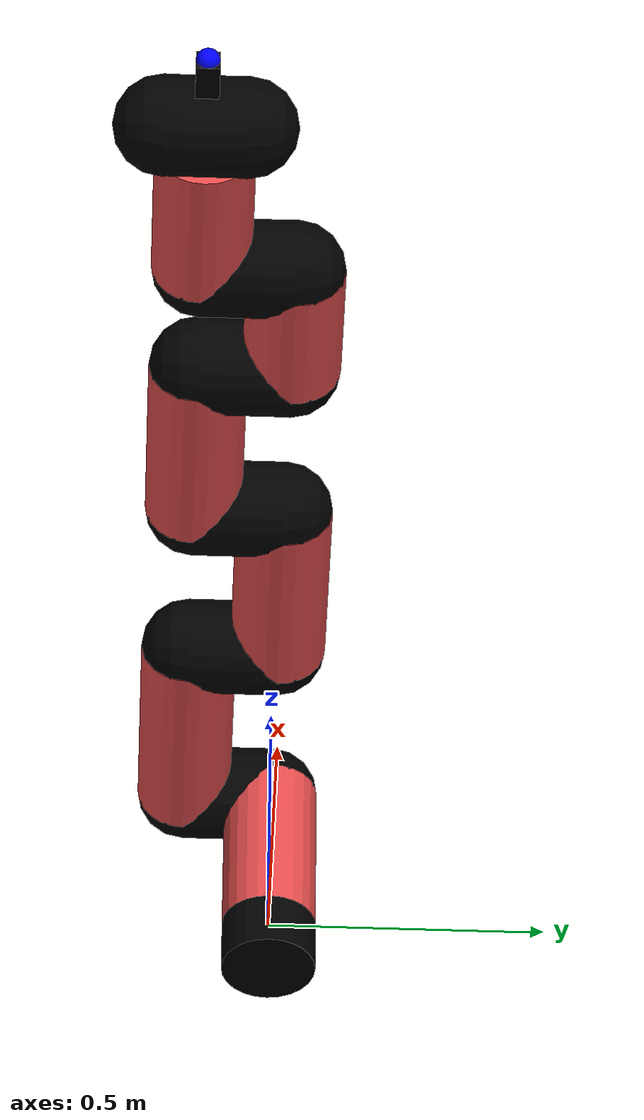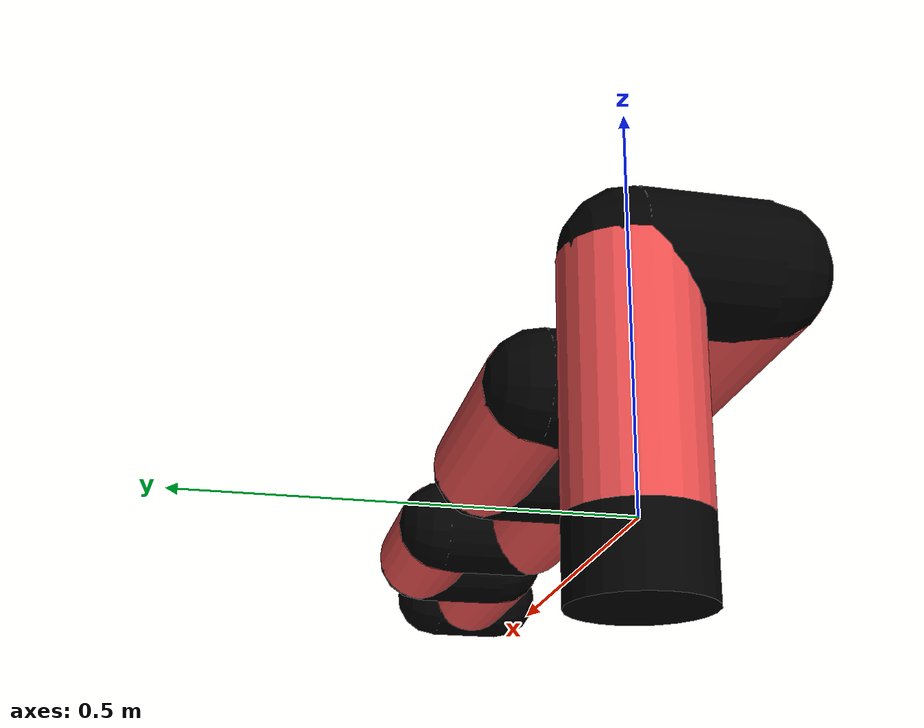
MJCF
<mujoco model="manipulator">
		<compiler angle="degree" coordinate="local" inertiafromgeom="auto" meshdir="meshes/"/>
		<option gravity="0 0 0" integrator="RK4" iterations="30" timestep="0.01"/>

		<default>
		<joint armature="1" limited="true" stiffness="10" damping="15" frictionloss="5.0"/>
		<geom conaffinity="1" condim="3" contype="1" friction=".5 .1 .1" margin="0.002"/>
		<motor ctrllimited="true"/>
		<position ctrllimited="true"/>
		</default>

		<asset>
		<texture builtin="gradient" height="100" rgb1="1.0 1.0 1.0" rgb2="1.0 1.0 1.0" type="skybox" width="100"/>
		<texture builtin="flat" height="32" name="arm_tex" rgb1="0.9 0.3 0.3" type="2d" width="32"/>
		<texture builtin="flat" height="32" name="gripper_tex" rgb1="0.0 0.0 0.0" type="cube" width="32"/>

		<material name="arm_mat" shininess="0.1" specular="0.1" texture="arm_tex"/>
		<material name="gripper_mat" shininess="1" specular="1" texture="gripper_tex"/>
		</asset>

		<worldbody>
		<light cutoff="45" diffuse=".8 .8 .8" dir="0 0.16 -1" directional="false" name="light" pos="0 -2.0 8.0" specular="0.3 0.3 0.3"/>

		<body name="base_link" pos="0 0 -0.1">
		<geom fromto="0 0 0 0 0 0.1" material="arm_mat" name="base_link" rgba="0.0 0.0 0.0 1" size="0.085" type="cylinder"/>
		</body>

		<body name="l1" pos="0 0 0">
<geom fromto="0 0 0 0 0 0.31" material="arm_mat" name="l1" rgba="0.9 0.3 0.3 1" size="0.085" type="cylinder"/>
<geom fromto="0 0 0.31 0 -0.16 0.31" material="arm_mat" name="l1_ex" rgba="0.0 0.0 0.0 1" size="0.085" type="capsule"/>
<joint axis="0 0 1" name="j1" pos="0 0 0" range="-90 90" damping="22.71" frictionloss="10.63"/>

<body name="l2" pos="0 -0.16 0.31">
<geom fromto="0 0 0 0.41 0 0" material="arm_mat" name="l2" rgba="0.9 0.3 0.3 1" size="0.085" type="cylinder"/>
<geom fromto="0.41 0 0 0.41 0.16 0" material="arm_mat" name="l2_ex" rgba="0.0 0.0 0.0 1" size="0.085" type="capsule"/>
<joint axis="0.0 1.0 0.0" name="j2" pos="0 0 0" range="-90 60" damping="27.24" frictionloss="9.71"/>

<body name="l3" pos="0.41 0.16 0">
<geom fromto="0 0 0 0.37 0 0" material="arm_mat" name="l3" rgba="0.9 0.3 0.3 1" size="0.085" type="cylinder"/>
<geom fromto="0.37 0 0 0.37 -0.16 0" material="arm_mat" name="l3_ex" rgba="0.0 0.0 0.0 1" size="0.085" type="capsule"/>
<joint axis="0.0 1.0 0.0" name="j3" pos="0 0 0" range="-30 60" damping="31.38" frictionloss="11.42"/>

<body name="l4" pos="0.37 -0.16 0">
<geom fromto="0 0 0 0.36 0 0" material="arm_mat" name="l4" rgba="0.9 0.3 0.3 1" size="0.085" type="cylinder"/>
<geom fromto="0.36 0 0 0.36 0.16 0" material="arm_mat" name="l4_ex" rgba="0.0 0.0 0.0 1" size="0.085" type="capsule"/>
<joint axis="0.0 1.0 0.0" name="j4" pos="0 0 0" range="-30 60" damping="36.7" frictionloss="12.47"/>

<body name="l5" pos="0.36 0.16 0">
<geom fromto="0 0 0 0.24 0 0" material="arm_mat" name="l5" rgba="0.9 0.3 0.3 1" size="0.085" type="cylinder"/>
<geom fromto="0.24 0 0 0.24 -0.16 0" material="arm_mat" name="l5_ex" rgba="0.0 0.0 0.0 1" size="0.085" type="capsule"/>
<joint axis="0.0 1.0 0.0" name="j5" pos="0 0 0" range="-30 60" damping="25.74" frictionloss="8.61"/>

<body name="l6" pos="0.24 -0.16 0">
<geom fromto="0 0 0 0.28 0 0" material="arm_mat" name="l6" rgba="0.9 0.3 0.3 1" size="0.085" type="cylinder"/>
<joint axis="0.0 1.0 0.0" name="j6" pos="0 0 0" range="-30 60" damping="29.0" frictionloss="11.33"/>

<body name="gripper" pos="0.28 0 0">
<geom fromto="0.05 -0.07 0 0.05 0.07 0" material="gripper_mat" name="gripper" rgba="0.0 0.0 0.0 1" size="0.085" type="capsule"/><joint axis="1 0 0" name="j7" pos="0 0 0" range="-90 90" damping="15" frictionloss="5.0"/><body name="finger" pos="0.1 0 0">
<geom fromto="0 0.0 0 0.1 0.0 0" material="gripper_mat" name="finger" rgba="0.0 0.0 0.0 1" size="0.020 0.06 0.06" type="box"/>
</body>
<site name="current" pos="0.2 0. 0.0" rgba="0. 0. 1.0 1" size="0.02" type="sphere"/>
</body>
</body>
</body>
</body>
</body>
</body>
</body>
</worldbody>
<actuator>
<motor ctrllimited="true" ctrlrange="-1.0 1.0" joint="j1" gear="83.57"/>
<motor ctrllimited="true" ctrlrange="-1.0 1.0" joint="j2" gear="93.39"/>
<motor ctrllimited="true" ctrlrange="-1.0 1.0" joint="j3" gear="74.81"/>
<motor ctrllimited="true" ctrlrange="-1.0 1.0" joint="j4" gear="84.72"/>
<motor ctrllimited="true" ctrlrange="-1.0 1.0" joint="j5" gear="84.38"/>
<motor ctrllimited="true" ctrlrange="-1.0 1.0" joint="j6" gear="63.84"/>
<motor ctrllimited="true" ctrlrange="-1.0 1.0" joint="j7" gear="80"/>
</actuator>
</mujoco>
